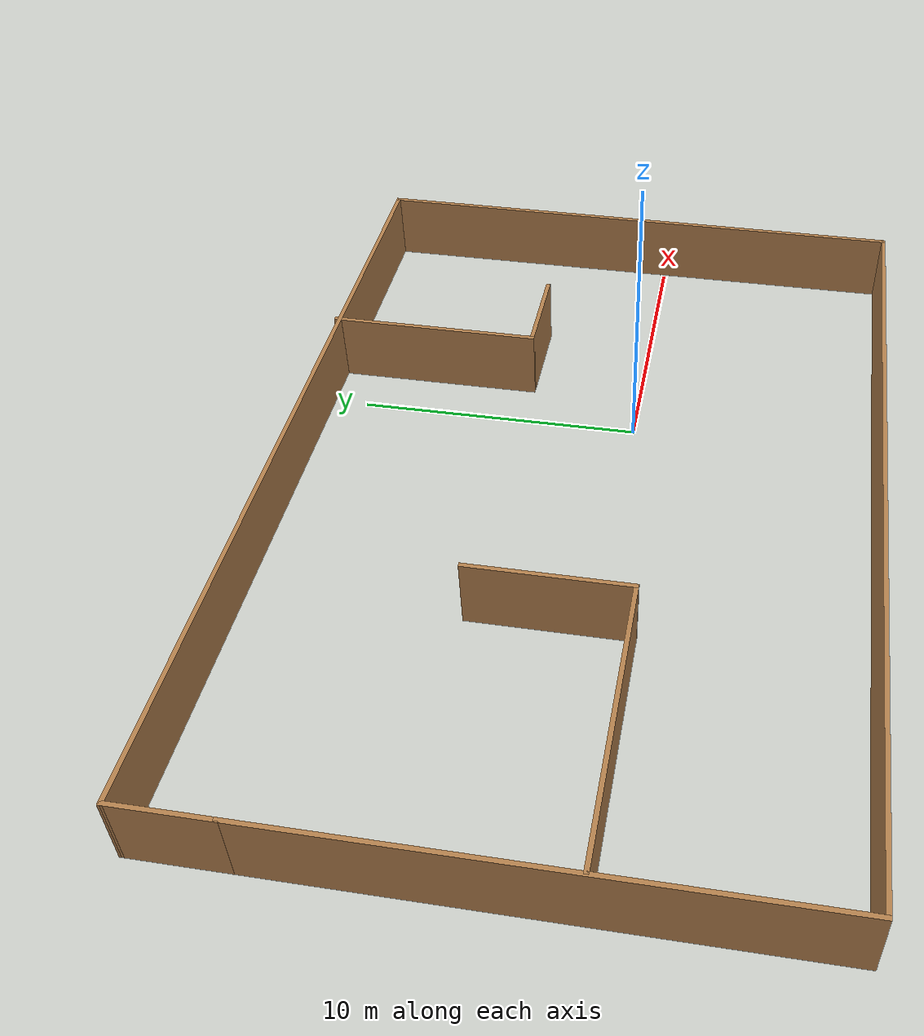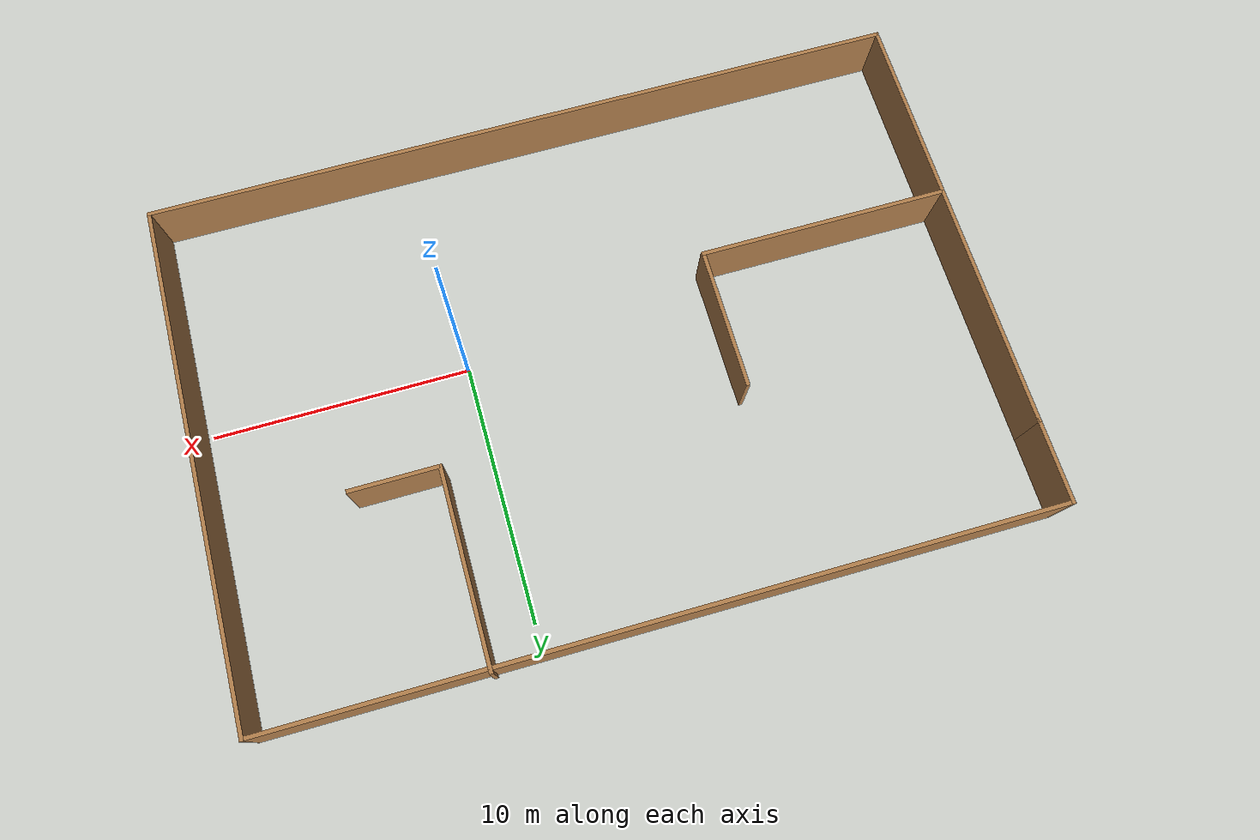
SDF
<?xml version='1.0'?>
<sdf version='1.7'>
  <model name='def_model'>
    <pose>-4.54958 1.39289 0 0 -0 0</pose>
    <link name='Wall_0'>
      <collision name='Wall_0_Collision'>
        <geometry>
          <box>
            <size>17 0.15 2.5</size>
          </box>
        </geometry>
        <pose>0 0 1.25 0 -0 0</pose>
      </collision>
      <visual name='Wall_0_Visual'>
        <pose>0 0 1.25 0 -0 0</pose>
        <geometry>
          <box>
            <size>17 0.15 2.5</size>
          </box>
        </geometry>
        <material>
          <script>
            <uri>file://media/materials/scripts/gazebo.material</uri>
            <name>Gazebo/Wood</name>
          </script>
          <ambient>1 1 1 1</ambient>
        </material>
        <meta>
          <layer>0</layer>
        </meta>
      </visual>
      <pose>-14.8 -1.57348 0 0 -0 -1.5708</pose>
    </link>
    <link name='Wall_1'>
      <collision name='Wall_1_Collision'>
        <geometry>
          <box>
            <size>29.75 0.15 2.5</size>
          </box>
        </geometry>
        <pose>0 0 1.25 0 -0 0</pose>
      </collision>
      <visual name='Wall_1_Visual'>
        <pose>0 0 1.25 0 -0 0</pose>
        <geometry>
          <box>
            <size>29.75 0.15 2.5</size>
          </box>
        </geometry>
        <material>
          <script>
            <uri>file://media/materials/scripts/gazebo.material</uri>
            <name>Gazebo/Wood</name>
          </script>
          <ambient>1 1 1 1</ambient>
        </material>
        <meta>
          <layer>0</layer>
        </meta>
      </visual>
      <pose>-0 -9.99848 0 0 -0 0</pose>
    </link>
    <link name='Wall_13'>
      <collision name='Wall_13_Collision'>
        <geometry>
          <box>
            <size>29.7502 0.15 2.5</size>
          </box>
        </geometry>
        <pose>0 0 1.25 0 -0 0</pose>
      </collision>
      <visual name='Wall_13_Visual'>
        <pose>0 0 1.25 0 -0 0</pose>
        <geometry>
          <box>
            <size>29.7502 0.15 2.5</size>
          </box>
        </geometry>
        <material>
          <script>
            <uri>file://media/materials/scripts/gazebo.material</uri>
            <name>Gazebo/Wood</name>
          </script>
          <ambient>1 1 1 1</ambient>
        </material>
        <meta>
          <layer>0</layer>
        </meta>
      </visual>
      <pose>-0 9.90152 0 0 -0 -0.003378</pose>
    </link>
    <link name='Wall_15'>
      <collision name='Wall_15_Collision'>
        <geometry>
          <box>
            <size>9.75 0.15 2.5</size>
          </box>
        </geometry>
        <pose>0 0 1.25 0 -0 0</pose>
      </collision>
      <visual name='Wall_15_Visual'>
        <pose>0 0 1.25 0 -0 0</pose>
        <geometry>
          <box>
            <size>9.75 0.15 2.5</size>
          </box>
        </geometry>
        <material>
          <script>
            <uri>file://media/materials/scripts/gazebo.material</uri>
            <name>Gazebo/Wood</name>
          </script>
          <ambient>1 1 1 1</ambient>
        </material>
        <meta>
          <layer>0</layer>
        </meta>
      </visual>
      <pose>-9.93489 -2.66703 0 0 -0 0</pose>
    </link>
    <link name='Wall_16'>
      <collision name='Wall_16_Collision'>
        <geometry>
          <box>
            <size>5.5 0.15 2.5</size>
          </box>
        </geometry>
        <pose>0 0 1.25 0 -0 0</pose>
      </collision>
      <visual name='Wall_16_Visual'>
        <pose>0 0 1.25 0 -0 0</pose>
        <geometry>
          <box>
            <size>5.5 0.15 2.5</size>
          </box>
        </geometry>
        <material>
          <script>
            <uri>file://media/materials/scripts/gazebo.material</uri>
            <name>Gazebo/Wood</name>
          </script>
          <ambient>1 1 1 1</ambient>
        </material>
        <meta>
          <layer>0</layer>
        </meta>
      </visual>
      <pose>-5.13489 0.007965 0 0 -0 1.5708</pose>
    </link>
    <link name='Wall_18'>
      <collision name='Wall_18_Collision'>
        <geometry>
          <box>
            <size>7.5 0.15 2.5</size>
          </box>
        </geometry>
        <pose>0 0 1.25 0 -0 0</pose>
      </collision>
      <visual name='Wall_18_Visual'>
        <pose>0 0 1.25 0 -0 0</pose>
        <geometry>
          <box>
            <size>7.5 0.15 2.5</size>
          </box>
        </geometry>
        <material>
          <script>
            <uri>file://media/materials/scripts/gazebo.material</uri>
            <name>Gazebo/Wood</name>
          </script>
          <ambient>1 1 1 1</ambient>
        </material>
        <meta>
          <layer>0</layer>
        </meta>
      </visual>
      <pose>6.35071 6.32348 0 0 -0 -1.5708</pose>
    </link>
    <link name='Wall_19'>
      <collision name='Wall_19_Collision'>
        <geometry>
          <box>
            <size>3.5 0.15 2.5</size>
          </box>
        </geometry>
        <pose>0 0 1.25 0 -0 0</pose>
      </collision>
      <visual name='Wall_19_Visual'>
        <pose>0 0 1.25 0 -0 0</pose>
        <geometry>
          <box>
            <size>3.5 0.15 2.5</size>
          </box>
        </geometry>
        <material>
          <script>
            <uri>file://media/materials/scripts/gazebo.material</uri>
            <name>Gazebo/Wood</name>
          </script>
          <ambient>1 1 1 1</ambient>
        </material>
        <meta>
          <layer>0</layer>
        </meta>
      </visual>
      <pose>8.02571 2.64848 0 0 -0 0</pose>
    </link>
    <link name='Wall_2'>
      <collision name='Wall_2_Collision'>
        <geometry>
          <box>
            <size>20 0.15 2.5</size>
          </box>
        </geometry>
        <pose>0 0 1.25 0 -0 0</pose>
      </collision>
      <visual name='Wall_2_Visual'>
        <pose>0 0 1.25 0 -0 0</pose>
        <geometry>
          <box>
            <size>20 0.15 2.5</size>
          </box>
        </geometry>
        <material>
          <script>
            <uri>file://media/materials/scripts/gazebo.material</uri>
            <name>Gazebo/Wood</name>
          </script>
          <ambient>1 1 1 1</ambient>
        </material>
        <meta>
          <layer>0</layer>
        </meta>
      </visual>
      <pose>14.8 -0.073477 0 0 -0 1.5708</pose>
    </link>
    <link name='Wall_4'>
      <collision name='Wall_4_Collision'>
        <geometry>
          <box>
            <size>3.25 0.15 2.5</size>
          </box>
        </geometry>
        <pose>0 0 1.25 0 -0 0</pose>
      </collision>
      <visual name='Wall_4_Visual'>
        <pose>0 0 1.25 0 -0 0</pose>
        <geometry>
          <box>
            <size>3.25 0.15 2.5</size>
          </box>
        </geometry>
        <material>
          <script>
            <uri>file://media/materials/scripts/gazebo.material</uri>
            <name>Gazebo/Wood</name>
          </script>
          <ambient>1 1 1 1</ambient>
        </material>
        <meta>
          <layer>0</layer>
        </meta>
      </visual>
      <pose>-14.8 8.40152 0 0 -0 1.5708</pose>
    </link>
    <static>1</static>
  </model>
</sdf>
